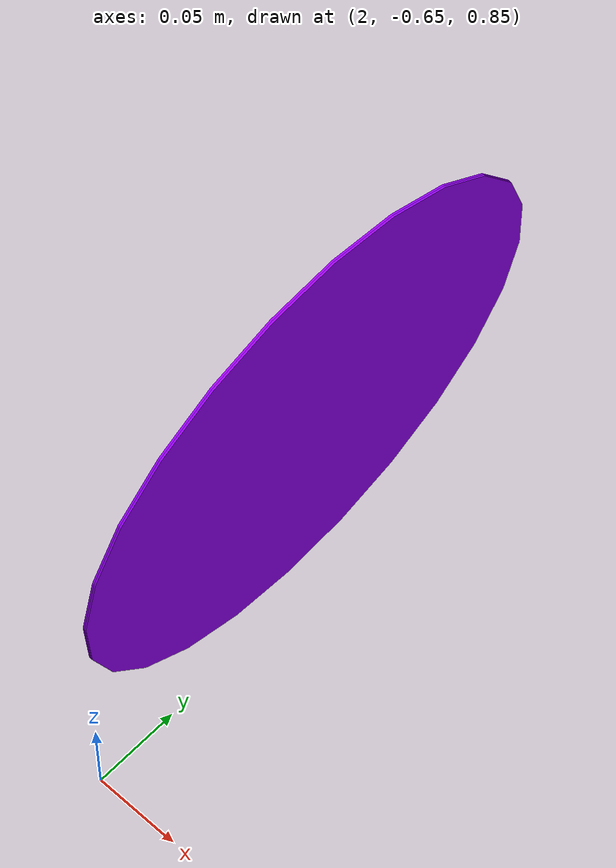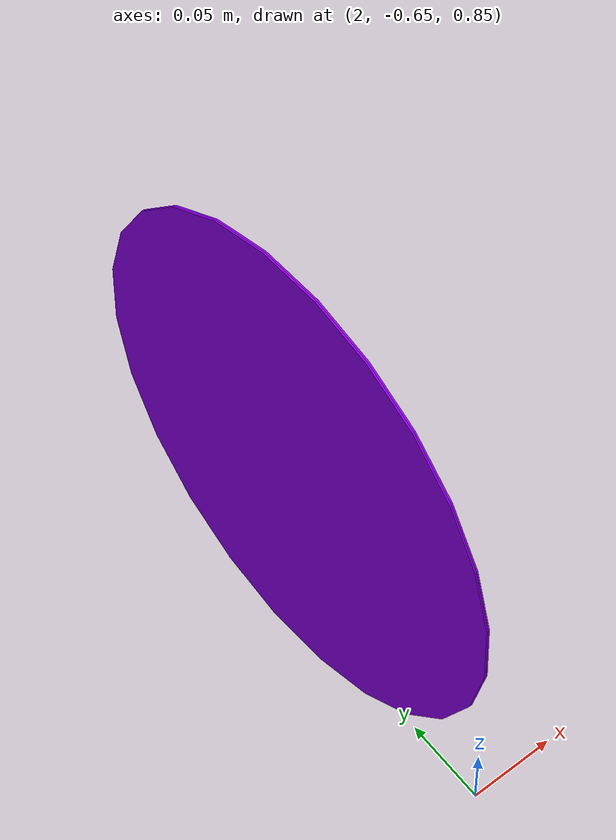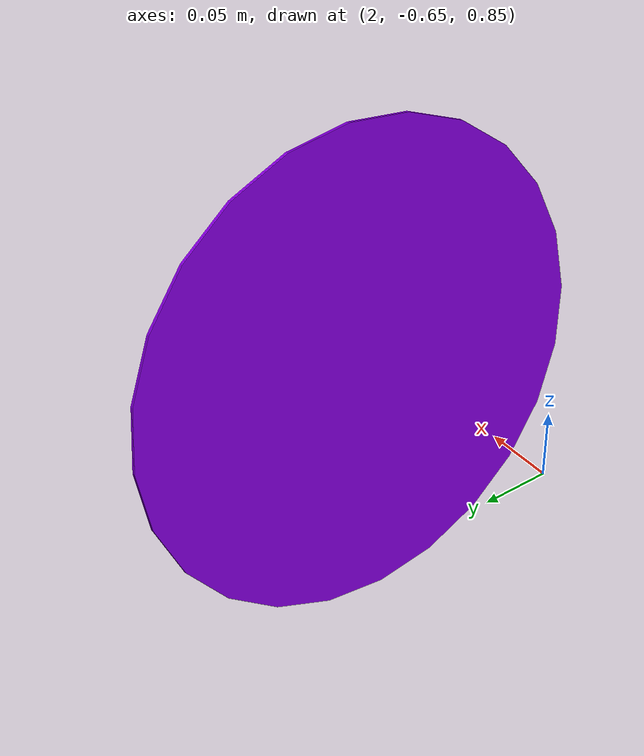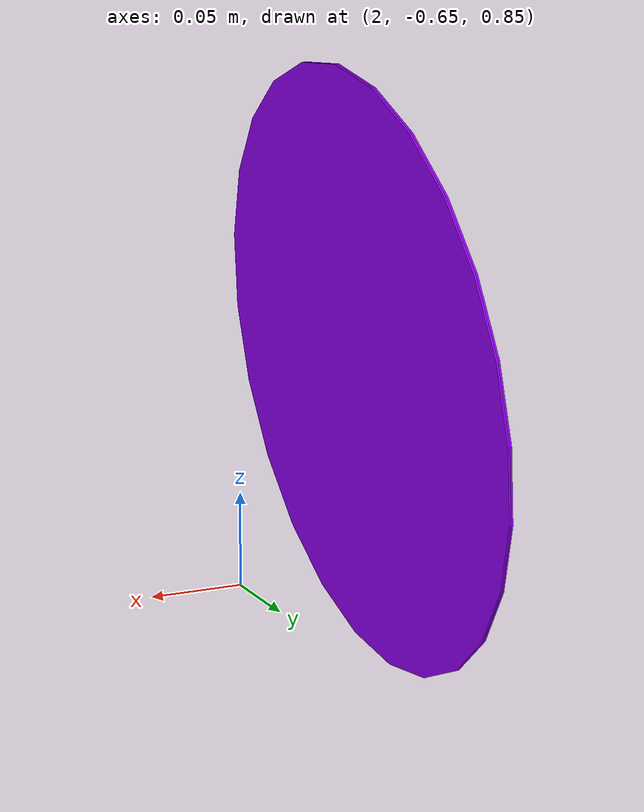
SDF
<sdf version="1.7">
 <world name="default">
  <model name="ground_plane">
   <static>1</static>
   <link name="link">
    <collision name="collision">
     <geometry><plane><normal>0 0 1</normal><size>100 100</size></plane></geometry>
     <surface>
      <contact><collide_bitmask>65535</collide_bitmask></contact>
      <friction><ode><mu>100</mu><mu2>50</mu2></ode></friction>
     </surface>
    </collision>
    <visual name="visual">
     <cast_shadows>0</cast_shadows>
     <geometry><plane><normal>0 0 1</normal><size>100 100</size></plane></geometry>
     <material>
      <script><uri>file://media/materials/scripts/gazebo.material</uri><name>Gazebo/Grey</name></script>
     </material>
    </visual>
   </link>
  </model>
  <light name="sun" type="directional">
   <pose>0 0 10 0 -0 0</pose>
   <diffuse>0.8 0.8 0.8 1</diffuse>
   <specular>0.2 0.2 0.2 1</specular>
   <attenuation>
    <range>1000</range>
    <constant>0.9</constant>
    <linear>0.01</linear>
    <quadratic>0.001</quadratic>
   </attenuation>
   <direction>-0.5 0.1 -0.9</direction>
   <spot><inner_angle>0</inner_angle><outer_angle>0</outer_angle><falloff>0</falloff></spot>
  </light>
  <physics name="default_physics" default="0" type="ode">
   <max_step_size>0.01</max_step_size>
   <real_time_factor>1</real_time_factor>
   <real_time_update_rate>100</real_time_update_rate>
   <ode>
    <solver>
     <type>quick</type>
     <iters>50</iters>
     <sor>1</sor>
     <use_dynamic_moi_rescaling>0</use_dynamic_moi_rescaling>
    </solver>
    <constraints>
     <cfm>0</cfm>
     <erp>0.2</erp>
     <contact_max_correcting_vel>100</contact_max_correcting_vel>
     <contact_surface_layer>0.001</contact_surface_layer>
    </constraints>
   </ode>
  </physics>
  <gravity>0 0 -9.8</gravity>
  <magnetic_field>6e-06 2.3e-05 -4.2e-05</magnetic_field>
  <atmosphere type="adiabatic"/>
  <scene><ambient>0.4 0.4 0.4 1</ambient><background>0.7 0.7 0.7 1</background><shadows>1</shadows></scene>
  <spherical_coordinates>
   <surface_model>EARTH_WGS84</surface_model>
   <latitude_deg>0</latitude_deg>
   <longitude_deg>0</longitude_deg>
   <elevation>0</elevation>
   <heading_deg>0</heading_deg>
  </spherical_coordinates>
  <include>
   <uri>model://circular_object</uri>
   <name>circular_object</name>
   <pose>2 -0.5 1 0 1.67 0</pose>
  </include>
 </world>
</sdf>

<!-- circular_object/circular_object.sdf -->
<sdf version="1.6">
  <model name="circular_object">
    <link name="link">
   <static>true</static>
   <kinematic>1</kinematic>
      <inertial>
        <pose>0 0 0 0 0 0</pose>
        <mass>0.001</mass>
        <inertia>
          <ixx>3.7499999999999997e-06</ixx>
          <ixy>0.0</ixy>
          <ixz>0.0</ixz>
          <iyy>1.8750008333333333e-06</iyy>
          <iyz>0.0</iyz>
          <izz>1.8750008333333333e-06</izz>
        </inertia>
      </inertial>
      <visual name="front_visual">
        <pose>0 0 0.0005 0 0 0</pose>

          <!--adding the geometry of the circular object-->

          <geometry>
            <cylinder>
                <radius>0.15</radius>
                <length>0.001</length>
            </cylinder>
          </geometry>

            <material>
              <script>
              <name>color_material</name>
              </script>
              <ambient>0.6 0 1 1</ambient>
            </material>
      </visual>
      <!-- Hide the marker from the back -->
      <visual name="rear_visual">
        <pose>0 0 -0.0005 0 0 0</pose>
        <geometry>
            <cylinder>
                <radius>0.15</radius>
                <length>0.001</length>
            </cylinder>
        </geometry>
                    <material>
              <script>
              <name>color_material</name>
              </script>
              <ambient>0.6 0 1 1</ambient>
            </material>
      </visual>
      <collision name="collision">
        <pose>0 0 0 0 0 0</pose>
        <geometry>

            <cylinder>
                <radius>0.15</radius>
                <length>0.001</length>
            </cylinder>

        </geometry>
      </collision>
    </link>
  </model>

</sdf>
